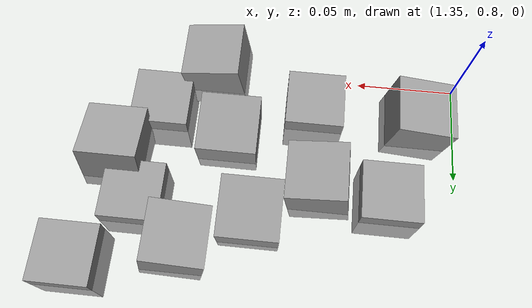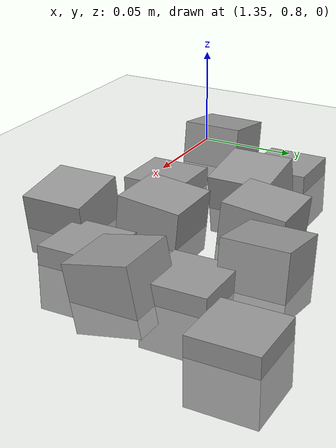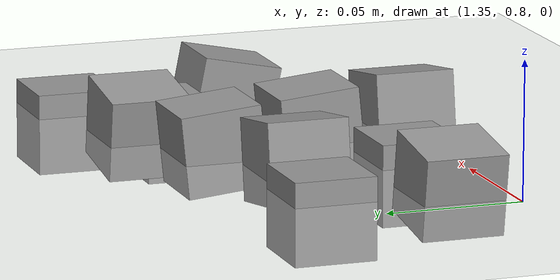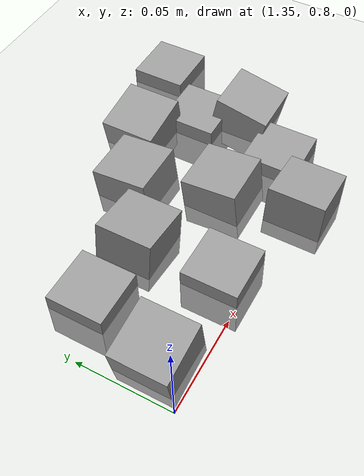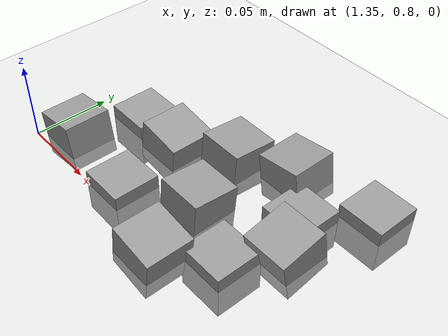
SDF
<sdf version="1.7">
 <world name="default">
  <model name="ground_plane">
   <static>1</static>
   <link name="link">
    <collision name="collision">
     <geometry><plane><normal>0 0 1</normal><size>100 100</size></plane></geometry>
     <surface><friction><ode><mu>100</mu><mu2>50</mu2></ode></friction></surface>
    </collision>
    <visual name="visual">
     <cast_shadows>0</cast_shadows>
     <geometry><plane><normal>0 0 1</normal><size>100 100</size></plane></geometry>
     <material>
      <script><uri>file://media/materials/scripts/gazebo.material</uri><name>Gazebo/Grey</name></script>
     </material>
    </visual>
   </link>
  </model>
  <model name="stone_road_0">
   <link name="link_0_clone_10">
    <inertial>
     <mass>1</mass>
     <inertia>
      <ixx>0.166667</ixx>
      <ixy>0</ixy>
      <ixz>0</ixz>
      <iyy>0.166667</iyy>
      <iyz>0</iyz>
      <izz>0.166667</izz>
     </inertia>
    </inertial>
    <pose>-0.01295 0.17123 0.003778 0.2 -0 0</pose>
    <kinematic>1</kinematic>
    <visual name="visual">
     <geometry><box><size>0.03 0.03 0.03</size></box></geometry>
     <material>
      <lighting>1</lighting>
      <script><uri>file://media/materials/scripts/gazebo.material</uri><name>Gazebo/Grey</name></script>
      <shader type="pixel"><normal_map>__default__</normal_map></shader>
      <ambient>0.3 0.3 0.3 1</ambient>
      <diffuse>0.7 0.7 0.7 1</diffuse>
      <specular>0.01 0.01 0.01 1</specular>
      <emissive>0 0 0 1</emissive>
     </material>
    </visual>
    <collision name="collision">
     <geometry><box><size>0.03 0.03 0.03</size></box></geometry>
     <surface>
      <friction>
       <ode><mu>1</mu><mu2>1</mu2><fdir1>0 0 0</fdir1><slip1>0</slip1><slip2>0</slip2></ode>
       <torsional>
        <coefficient>1</coefficient>
        <patch_radius>0</patch_radius>
        <surface_radius>0</surface_radius>
        <use_patch_radius>1</use_patch_radius>
        <ode><slip>0</slip></ode>
       </torsional>
      </friction>
      <bounce><restitution_coefficient>0</restitution_coefficient><threshold>1e+06</threshold></bounce>
      <contact>
       <collide_without_contact>0</collide_without_contact>
       <collide_without_contact_bitmask>1</collide_without_contact_bitmask>
       <collide_bitmask>1</collide_bitmask>
       <ode>
        <soft_cfm>0</soft_cfm>
        <soft_erp>0.2</soft_erp>
        <kp>1e+13</kp>
        <kd>1</kd>
        <max_vel>0.01</max_vel>
        <min_depth>0</min_depth>
       </ode>
       <bullet>
        <split_impulse>1</split_impulse>
        <split_impulse_penetration_threshold>-0.01</split_impulse_penetration_threshold>
        <soft_cfm>0</soft_cfm>
        <soft_erp>0.2</soft_erp>
        <kp>1e+13</kp>
        <kd>1</kd>
       </bullet>
      </contact>
     </surface>
    </collision>
   </link>
   <link name="link_0_clone_2_clone_2_clone_11">
    <inertial>
     <mass>1</mass>
     <inertia>
      <ixx>0.166667</ixx>
      <ixy>0</ixy>
      <ixz>0</ixz>
      <iyy>0.166667</iyy>
      <iyz>0</iyz>
      <izz>0.166667</izz>
     </inertia>
    </inertial>
    <pose>-0.050382 0.216558 0.003778 0 -0.15 0</pose>
    <kinematic>1</kinematic>
    <visual name="visual">
     <geometry><box><size>0.03 0.03 0.03</size></box></geometry>
     <material>
      <lighting>1</lighting>
      <script><uri>file://media/materials/scripts/gazebo.material</uri><name>Gazebo/Grey</name></script>
      <shader type="pixel"><normal_map>__default__</normal_map></shader>
      <ambient>0.3 0.3 0.3 1</ambient>
      <diffuse>0.7 0.7 0.7 1</diffuse>
      <specular>0.01 0.01 0.01 1</specular>
      <emissive>0 0 0 1</emissive>
     </material>
    </visual>
    <collision name="collision">
     <geometry><box><size>0.03 0.03 0.03</size></box></geometry>
     <surface>
      <friction>
       <ode><mu>1</mu><mu2>1</mu2><fdir1>0 0 0</fdir1><slip1>0</slip1><slip2>0</slip2></ode>
       <torsional>
        <coefficient>1</coefficient>
        <patch_radius>0</patch_radius>
        <surface_radius>0</surface_radius>
        <use_patch_radius>1</use_patch_radius>
        <ode><slip>0</slip></ode>
       </torsional>
      </friction>
      <bounce><restitution_coefficient>0</restitution_coefficient><threshold>1e+06</threshold></bounce>
      <contact>
       <collide_without_contact>0</collide_without_contact>
       <collide_without_contact_bitmask>1</collide_without_contact_bitmask>
       <collide_bitmask>1</collide_bitmask>
       <ode>
        <soft_cfm>0</soft_cfm>
        <soft_erp>0.2</soft_erp>
        <kp>1e+13</kp>
        <kd>1</kd>
        <max_vel>0.01</max_vel>
        <min_depth>0</min_depth>
       </ode>
       <bullet>
        <split_impulse>1</split_impulse>
        <split_impulse_penetration_threshold>-0.01</split_impulse_penetration_threshold>
        <soft_cfm>0</soft_cfm>
        <soft_erp>0.2</soft_erp>
        <kp>1e+13</kp>
        <kd>1</kd>
       </bullet>
      </contact>
     </surface>
    </collision>
   </link>
   <link name="link_0_clone_2_clone_2_clone_13_clone_clone_13">
    <inertial>
     <mass>1</mass>
     <inertia>
      <ixx>0.166667</ixx>
      <ixy>0</ixy>
      <ixz>0</ixz>
      <iyy>0.166667</iyy>
      <iyz>0</iyz>
      <izz>0.166667</izz>
     </inertia>
    </inertial>
    <pose>-0.069861 0.157394 0.003778 -0.1 0 0</pose>
    <kinematic>1</kinematic>
    <visual name="visual">
     <geometry><box><size>0.03 0.03 0.03</size></box></geometry>
     <material>
      <lighting>1</lighting>
      <script><uri>file://media/materials/scripts/gazebo.material</uri><name>Gazebo/Grey</name></script>
      <shader type="pixel"><normal_map>__default__</normal_map></shader>
      <ambient>0.3 0.3 0.3 1</ambient>
      <diffuse>0.7 0.7 0.7 1</diffuse>
      <specular>0.01 0.01 0.01 1</specular>
      <emissive>0 0 0 1</emissive>
     </material>
    </visual>
    <collision name="collision">
     <geometry><box><size>0.03 0.03 0.03</size></box></geometry>
     <surface>
      <friction>
       <ode><mu>1</mu><mu2>1</mu2><fdir1>0 0 0</fdir1><slip1>0</slip1><slip2>0</slip2></ode>
       <torsional>
        <coefficient>1</coefficient>
        <patch_radius>0</patch_radius>
        <surface_radius>0</surface_radius>
        <use_patch_radius>1</use_patch_radius>
        <ode><slip>0</slip></ode>
       </torsional>
      </friction>
      <bounce><restitution_coefficient>0</restitution_coefficient><threshold>1e+06</threshold></bounce>
      <contact>
       <collide_without_contact>0</collide_without_contact>
       <collide_without_contact_bitmask>1</collide_without_contact_bitmask>
       <collide_bitmask>1</collide_bitmask>
       <ode>
        <soft_cfm>0</soft_cfm>
        <soft_erp>0.2</soft_erp>
        <kp>1e+13</kp>
        <kd>1</kd>
        <max_vel>0.01</max_vel>
        <min_depth>0</min_depth>
       </ode>
       <bullet>
        <split_impulse>1</split_impulse>
        <split_impulse_penetration_threshold>-0.01</split_impulse_penetration_threshold>
        <soft_cfm>0</soft_cfm>
        <soft_erp>0.2</soft_erp>
        <kp>1e+13</kp>
        <kd>1</kd>
       </bullet>
      </contact>
     </surface>
    </collision>
   </link>
   <link name="link_0_clone_2_clone_2_clone_13_clone_clone_15">
    <inertial>
     <mass>1</mass>
     <inertia>
      <ixx>0.166667</ixx>
      <ixy>0</ixy>
      <ixz>0</ixz>
      <iyy>0.166667</iyy>
      <iyz>0</iyz>
      <izz>0.166667</izz>
     </inertia>
    </inertial>
    <pose>-0.084893 0.19984 0.003778 -0.1 0 0</pose>
    <kinematic>1</kinematic>
    <visual name="visual">
     <geometry><box><size>0.03 0.03 0.03</size></box></geometry>
     <material>
      <lighting>1</lighting>
      <script><uri>file://media/materials/scripts/gazebo.material</uri><name>Gazebo/Grey</name></script>
      <shader type="pixel"><normal_map>__default__</normal_map></shader>
      <ambient>0.3 0.3 0.3 1</ambient>
      <diffuse>0.7 0.7 0.7 1</diffuse>
      <specular>0.01 0.01 0.01 1</specular>
      <emissive>0 0 0 1</emissive>
     </material>
    </visual>
    <collision name="collision">
     <geometry><box><size>0.03 0.03 0.03</size></box></geometry>
     <surface>
      <friction>
       <ode><mu>1</mu><mu2>1</mu2><fdir1>0 0 0</fdir1><slip1>0</slip1><slip2>0</slip2></ode>
       <torsional>
        <coefficient>1</coefficient>
        <patch_radius>0</patch_radius>
        <surface_radius>0</surface_radius>
        <use_patch_radius>1</use_patch_radius>
        <ode><slip>0</slip></ode>
       </torsional>
      </friction>
      <bounce><restitution_coefficient>0</restitution_coefficient><threshold>1e+06</threshold></bounce>
      <contact>
       <collide_without_contact>0</collide_without_contact>
       <collide_without_contact_bitmask>1</collide_without_contact_bitmask>
       <collide_bitmask>1</collide_bitmask>
       <ode>
        <soft_cfm>0</soft_cfm>
        <soft_erp>0.2</soft_erp>
        <kp>1e+13</kp>
        <kd>1</kd>
        <max_vel>0.01</max_vel>
        <min_depth>0</min_depth>
       </ode>
       <bullet>
        <split_impulse>1</split_impulse>
        <split_impulse_penetration_threshold>-0.01</split_impulse_penetration_threshold>
        <soft_cfm>0</soft_cfm>
        <soft_erp>0.2</soft_erp>
        <kp>1e+13</kp>
        <kd>1</kd>
       </bullet>
      </contact>
     </surface>
    </collision>
   </link>
   <link name="link_0_clone_2_clone_2_clone_13_clone_clone_16_clone_21">
    <inertial>
     <mass>1</mass>
     <inertia>
      <ixx>0.166667</ixx>
      <ixy>0</ixy>
      <ixz>0</ixz>
      <iyy>0.166667</iyy>
      <iyz>0</iyz>
      <izz>0.166667</izz>
     </inertia>
    </inertial>
    <pose>-0.032398 0.142589 -0.006222 0 -0 0</pose>
    <kinematic>1</kinematic>
    <visual name="visual">
     <geometry><box><size>0.03 0.03 0.03</size></box></geometry>
     <material>
      <lighting>1</lighting>
      <script><uri>file://media/materials/scripts/gazebo.material</uri><name>Gazebo/Grey</name></script>
      <shader type="pixel"><normal_map>__default__</normal_map></shader>
      <ambient>0.3 0.3 0.3 1</ambient>
      <diffuse>0.7 0.7 0.7 1</diffuse>
      <specular>0.01 0.01 0.01 1</specular>
      <emissive>0 0 0 1</emissive>
     </material>
    </visual>
    <collision name="collision">
     <geometry><box><size>0.03 0.03 0.03</size></box></geometry>
     <surface>
      <friction>
       <ode><mu>1</mu><mu2>1</mu2><fdir1>0 0 0</fdir1><slip1>0</slip1><slip2>0</slip2></ode>
       <torsional>
        <coefficient>1</coefficient>
        <patch_radius>0</patch_radius>
        <surface_radius>0</surface_radius>
        <use_patch_radius>1</use_patch_radius>
        <ode><slip>0</slip></ode>
       </torsional>
      </friction>
      <bounce><restitution_coefficient>0</restitution_coefficient><threshold>1e+06</threshold></bounce>
      <contact>
       <collide_without_contact>0</collide_without_contact>
       <collide_without_contact_bitmask>1</collide_without_contact_bitmask>
       <collide_bitmask>1</collide_bitmask>
       <ode>
        <soft_cfm>0</soft_cfm>
        <soft_erp>0.2</soft_erp>
        <kp>1e+13</kp>
        <kd>1</kd>
        <max_vel>0.01</max_vel>
        <min_depth>0</min_depth>
       </ode>
       <bullet>
        <split_impulse>1</split_impulse>
        <split_impulse_penetration_threshold>-0.01</split_impulse_penetration_threshold>
        <soft_cfm>0</soft_cfm>
        <soft_erp>0.2</soft_erp>
        <kp>1e+13</kp>
        <kd>1</kd>
       </bullet>
      </contact>
     </surface>
    </collision>
   </link>
   <link name="link_0_clone_2_clone_2_clone_13_clone_clone_16_clone_22">
    <inertial>
     <mass>1</mass>
     <inertia>
      <ixx>0.166667</ixx>
      <ixy>0</ixy>
      <ixz>0</ixz>
      <iyy>0.166667</iyy>
      <iyz>0</iyz>
      <izz>0.166667</izz>
     </inertia>
    </inertial>
    <pose>-0.025872 0.194724 -0.006222 0 -0 0</pose>
    <kinematic>1</kinematic>
    <visual name="visual">
     <geometry><box><size>0.03 0.03 0.03</size></box></geometry>
     <material>
      <lighting>1</lighting>
      <script><uri>file://media/materials/scripts/gazebo.material</uri><name>Gazebo/Grey</name></script>
      <shader type="pixel"><normal_map>__default__</normal_map></shader>
      <ambient>0.3 0.3 0.3 1</ambient>
      <diffuse>0.7 0.7 0.7 1</diffuse>
      <specular>0.01 0.01 0.01 1</specular>
      <emissive>0 0 0 1</emissive>
     </material>
    </visual>
    <collision name="collision">
     <geometry><box><size>0.03 0.03 0.03</size></box></geometry>
     <surface>
      <friction>
       <ode><mu>1</mu><mu2>1</mu2><fdir1>0 0 0</fdir1><slip1>0</slip1><slip2>0</slip2></ode>
       <torsional>
        <coefficient>1</coefficient>
        <patch_radius>0</patch_radius>
        <surface_radius>0</surface_radius>
        <use_patch_radius>1</use_patch_radius>
        <ode><slip>0</slip></ode>
       </torsional>
      </friction>
      <bounce><restitution_coefficient>0</restitution_coefficient><threshold>1e+06</threshold></bounce>
      <contact>
       <collide_without_contact>0</collide_without_contact>
       <collide_without_contact_bitmask>1</collide_without_contact_bitmask>
       <collide_bitmask>1</collide_bitmask>
       <ode>
        <soft_cfm>0</soft_cfm>
        <soft_erp>0.2</soft_erp>
        <kp>1e+13</kp>
        <kd>1</kd>
        <max_vel>0.01</max_vel>
        <min_depth>0</min_depth>
       </ode>
       <bullet>
        <split_impulse>1</split_impulse>
        <split_impulse_penetration_threshold>-0.01</split_impulse_penetration_threshold>
        <soft_cfm>0</soft_cfm>
        <soft_erp>0.2</soft_erp>
        <kp>1e+13</kp>
        <kd>1</kd>
       </bullet>
      </contact>
     </surface>
    </collision>
   </link>
   <link name="link_0_clone_2_clone_2_clone_13_clone_clone_16_clone_23">
    <inertial>
     <mass>1</mass>
     <inertia>
      <ixx>0.166667</ixx>
      <ixy>0</ixy>
      <ixz>0</ixz>
      <iyy>0.166667</iyy>
      <iyz>0</iyz>
      <izz>0.166667</izz>
     </inertia>
    </inertial>
    <pose>0.000385 0.228664 -0.006222 0 -0 0</pose>
    <kinematic>1</kinematic>
    <visual name="visual">
     <geometry><box><size>0.03 0.03 0.03</size></box></geometry>
     <material>
      <lighting>1</lighting>
      <script><uri>file://media/materials/scripts/gazebo.material</uri><name>Gazebo/Grey</name></script>
      <shader type="pixel"><normal_map>__default__</normal_map></shader>
      <ambient>0.3 0.3 0.3 1</ambient>
      <diffuse>0.7 0.7 0.7 1</diffuse>
      <specular>0.01 0.01 0.01 1</specular>
      <emissive>0 0 0 1</emissive>
     </material>
    </visual>
    <collision name="collision">
     <geometry><box><size>0.03 0.03 0.03</size></box></geometry>
     <surface>
      <friction>
       <ode><mu>1</mu><mu2>1</mu2><fdir1>0 0 0</fdir1><slip1>0</slip1><slip2>0</slip2></ode>
       <torsional>
        <coefficient>1</coefficient>
        <patch_radius>0</patch_radius>
        <surface_radius>0</surface_radius>
        <use_patch_radius>1</use_patch_radius>
        <ode><slip>0</slip></ode>
       </torsional>
      </friction>
      <bounce><restitution_coefficient>0</restitution_coefficient><threshold>1e+06</threshold></bounce>
      <contact>
       <collide_without_contact>0</collide_without_contact>
       <collide_without_contact_bitmask>1</collide_without_contact_bitmask>
       <collide_bitmask>1</collide_bitmask>
       <ode>
        <soft_cfm>0</soft_cfm>
        <soft_erp>0.2</soft_erp>
        <kp>1e+13</kp>
        <kd>1</kd>
        <max_vel>0.01</max_vel>
        <min_depth>0</min_depth>
       </ode>
       <bullet>
        <split_impulse>1</split_impulse>
        <split_impulse_penetration_threshold>-0.01</split_impulse_penetration_threshold>
        <soft_cfm>0</soft_cfm>
        <soft_erp>0.2</soft_erp>
        <kp>1e+13</kp>
        <kd>1</kd>
       </bullet>
      </contact>
     </surface>
    </collision>
   </link>
   <link name="link_0_clone_2_clone_2_clone_13_clone_clone_16_clone_25">
    <inertial>
     <mass>1</mass>
     <inertia>
      <ixx>0.166667</ixx>
      <ixy>0</ixy>
      <ixz>0</ixz>
      <iyy>0.166667</iyy>
      <iyz>0</iyz>
      <izz>0.166667</izz>
     </inertia>
    </inertial>
    <pose>-0.15326 0.182661 -0.006222 0 -0 0</pose>
    <kinematic>1</kinematic>
    <visual name="visual">
     <geometry><box><size>0.03 0.03 0.03</size></box></geometry>
     <material>
      <lighting>1</lighting>
      <script><uri>file://media/materials/scripts/gazebo.material</uri><name>Gazebo/Grey</name></script>
      <shader type="pixel"><normal_map>__default__</normal_map></shader>
      <ambient>0.3 0.3 0.3 1</ambient>
      <diffuse>0.7 0.7 0.7 1</diffuse>
      <specular>0.01 0.01 0.01 1</specular>
      <emissive>0 0 0 1</emissive>
     </material>
    </visual>
    <collision name="collision">
     <geometry><box><size>0.03 0.03 0.03</size></box></geometry>
     <surface>
      <friction>
       <ode><mu>1</mu><mu2>1</mu2><fdir1>0 0 0</fdir1><slip1>0</slip1><slip2>0</slip2></ode>
       <torsional>
        <coefficient>1</coefficient>
        <patch_radius>0</patch_radius>
        <surface_radius>0</surface_radius>
        <use_patch_radius>1</use_patch_radius>
        <ode><slip>0</slip></ode>
       </torsional>
      </friction>
      <bounce><restitution_coefficient>0</restitution_coefficient><threshold>1e+06</threshold></bounce>
      <contact>
       <collide_without_contact>0</collide_without_contact>
       <collide_without_contact_bitmask>1</collide_without_contact_bitmask>
       <collide_bitmask>1</collide_bitmask>
       <ode>
        <soft_cfm>0</soft_cfm>
        <soft_erp>0.2</soft_erp>
        <kp>1e+13</kp>
        <kd>1</kd>
        <max_vel>0.01</max_vel>
        <min_depth>0</min_depth>
       </ode>
       <bullet>
        <split_impulse>1</split_impulse>
        <split_impulse_penetration_threshold>-0.01</split_impulse_penetration_threshold>
        <soft_cfm>0</soft_cfm>
        <soft_erp>0.2</soft_erp>
        <kp>1e+13</kp>
        <kd>1</kd>
       </bullet>
      </contact>
     </surface>
    </collision>
   </link>
   <link name="link_0_clone_2_clone_2_clone_13_clone_clone_16_clone_3">
    <inertial>
     <mass>1</mass>
     <inertia>
      <ixx>0.166667</ixx>
      <ixy>0</ixy>
      <ixz>0</ixz>
      <iyy>0.166667</iyy>
      <iyz>0</iyz>
      <izz>0.166667</izz>
     </inertia>
    </inertial>
    <pose>-0.112739 0.135576 -0.006222 0 -0 0</pose>
    <kinematic>1</kinematic>
    <visual name="visual">
     <geometry><box><size>0.03 0.03 0.03</size></box></geometry>
     <material>
      <lighting>1</lighting>
      <script><uri>file://media/materials/scripts/gazebo.material</uri><name>Gazebo/Grey</name></script>
      <shader type="pixel"><normal_map>__default__</normal_map></shader>
      <ambient>0.3 0.3 0.3 1</ambient>
      <diffuse>0.7 0.7 0.7 1</diffuse>
      <specular>0.01 0.01 0.01 1</specular>
      <emissive>0 0 0 1</emissive>
     </material>
    </visual>
    <collision name="collision">
     <geometry><box><size>0.03 0.03 0.03</size></box></geometry>
     <surface>
      <friction>
       <ode><mu>1</mu><mu2>1</mu2><fdir1>0 0 0</fdir1><slip1>0</slip1><slip2>0</slip2></ode>
       <torsional>
        <coefficient>1</coefficient>
        <patch_radius>0</patch_radius>
        <surface_radius>0</surface_radius>
        <use_patch_radius>1</use_patch_radius>
        <ode><slip>0</slip></ode>
       </torsional>
      </friction>
      <bounce><restitution_coefficient>0</restitution_coefficient><threshold>1e+06</threshold></bounce>
      <contact>
       <collide_without_contact>0</collide_without_contact>
       <collide_without_contact_bitmask>1</collide_without_contact_bitmask>
       <collide_bitmask>1</collide_bitmask>
       <ode>
        <soft_cfm>0</soft_cfm>
        <soft_erp>0.2</soft_erp>
        <kp>1e+13</kp>
        <kd>1</kd>
        <max_vel>0.01</max_vel>
        <min_depth>0</min_depth>
       </ode>
       <bullet>
        <split_impulse>1</split_impulse>
        <split_impulse_penetration_threshold>-0.01</split_impulse_penetration_threshold>
        <soft_cfm>0</soft_cfm>
        <soft_erp>0.2</soft_erp>
        <kp>1e+13</kp>
        <kd>1</kd>
       </bullet>
      </contact>
     </surface>
    </collision>
   </link>
   <link name="link_0_clone_2_clone_2_clone_2">
    <inertial>
     <mass>1</mass>
     <inertia>
      <ixx>0.166667</ixx>
      <ixy>0</ixy>
      <ixz>0</ixz>
      <iyy>0.166667</iyy>
      <iyz>0</iyz>
      <izz>0.166667</izz>
     </inertia>
    </inertial>
    <pose>-0.166079 0.139989 0.003778 0 -0.15 0</pose>
    <kinematic>1</kinematic>
    <visual name="visual">
     <geometry><box><size>0.03 0.03 0.03</size></box></geometry>
     <material>
      <lighting>1</lighting>
      <script><uri>file://media/materials/scripts/gazebo.material</uri><name>Gazebo/Grey</name></script>
      <shader type="pixel"><normal_map>__default__</normal_map></shader>
      <ambient>0.3 0.3 0.3 1</ambient>
      <diffuse>0.7 0.7 0.7 1</diffuse>
      <specular>0.01 0.01 0.01 1</specular>
      <emissive>0 0 0 1</emissive>
     </material>
    </visual>
    <collision name="collision">
     <geometry><box><size>0.03 0.03 0.03</size></box></geometry>
     <surface>
      <friction>
       <ode><mu>1</mu><mu2>1</mu2><fdir1>0 0 0</fdir1><slip1>0</slip1><slip2>0</slip2></ode>
       <torsional>
        <coefficient>1</coefficient>
        <patch_radius>0</patch_radius>
        <surface_radius>0</surface_radius>
        <use_patch_radius>1</use_patch_radius>
        <ode><slip>0</slip></ode>
       </torsional>
      </friction>
      <bounce><restitution_coefficient>0</restitution_coefficient><threshold>1e+06</threshold></bounce>
      <contact>
       <collide_without_contact>0</collide_without_contact>
       <collide_without_contact_bitmask>1</collide_without_contact_bitmask>
       <collide_bitmask>1</collide_bitmask>
       <ode>
        <soft_cfm>0</soft_cfm>
        <soft_erp>0.2</soft_erp>
        <kp>1e+13</kp>
        <kd>1</kd>
        <max_vel>0.01</max_vel>
        <min_depth>0</min_depth>
       </ode>
       <bullet>
        <split_impulse>1</split_impulse>
        <split_impulse_penetration_threshold>-0.01</split_impulse_penetration_threshold>
        <soft_cfm>0</soft_cfm>
        <soft_erp>0.2</soft_erp>
        <kp>1e+13</kp>
        <kd>1</kd>
       </bullet>
      </contact>
     </surface>
    </collision>
   </link>
   <link name="link_0_clone_2_clone_3">
    <inertial>
     <mass>1</mass>
     <inertia>
      <ixx>0.166667</ixx>
      <ixy>0</ixy>
      <ixz>0</ixz>
      <iyy>0.166667</iyy>
      <iyz>0</iyz>
      <izz>0.166667</izz>
     </inertia>
    </inertial>
    <pose>-0.058921 0.117271 0.003778 0 0.15 0</pose>
    <kinematic>1</kinematic>
    <visual name="visual">
     <geometry><box><size>0.03 0.03 0.03</size></box></geometry>
     <material>
      <lighting>1</lighting>
      <script><uri>file://media/materials/scripts/gazebo.material</uri><name>Gazebo/Grey</name></script>
      <shader type="pixel"><normal_map>__default__</normal_map></shader>
      <ambient>0.3 0.3 0.3 1</ambient>
      <diffuse>0.7 0.7 0.7 1</diffuse>
      <specular>0.01 0.01 0.01 1</specular>
      <emissive>0 0 0 1</emissive>
     </material>
    </visual>
    <collision name="collision">
     <geometry><box><size>0.03 0.03 0.03</size></box></geometry>
     <surface>
      <friction>
       <ode><mu>1</mu><mu2>1</mu2><fdir1>0 0 0</fdir1><slip1>0</slip1><slip2>0</slip2></ode>
       <torsional>
        <coefficient>1</coefficient>
        <patch_radius>0</patch_radius>
        <surface_radius>0</surface_radius>
        <use_patch_radius>1</use_patch_radius>
        <ode><slip>0</slip></ode>
       </torsional>
      </friction>
      <bounce><restitution_coefficient>0</restitution_coefficient><threshold>1e+06</threshold></bounce>
      <contact>
       <collide_without_contact>0</collide_without_contact>
       <collide_without_contact_bitmask>1</collide_without_contact_bitmask>
       <collide_bitmask>1</collide_bitmask>
       <ode>
        <soft_cfm>0</soft_cfm>
        <soft_erp>0.2</soft_erp>
        <kp>1e+13</kp>
        <kd>1</kd>
        <max_vel>0.01</max_vel>
        <min_depth>0</min_depth>
       </ode>
       <bullet>
        <split_impulse>1</split_impulse>
        <split_impulse_penetration_threshold>-0.01</split_impulse_penetration_threshold>
        <soft_cfm>0</soft_cfm>
        <soft_erp>0.2</soft_erp>
        <kp>1e+13</kp>
        <kd>1</kd>
       </bullet>
      </contact>
     </surface>
    </collision>
   </link>
   <link name="link_0_clone_2_clone_4">
    <inertial>
     <mass>1</mass>
     <inertia>
      <ixx>0.166667</ixx>
      <ixy>0</ixy>
      <ixz>0</ixz>
      <iyy>0.166667</iyy>
      <iyz>0</iyz>
      <izz>0.166667</izz>
     </inertia>
    </inertial>
    <pose>-0.117313 0.179399 0.003778 0 0.15 0</pose>
    <kinematic>1</kinematic>
    <visual name="visual">
     <geometry><box><size>0.03 0.03 0.03</size></box></geometry>
     <material>
      <lighting>1</lighting>
      <script><uri>file://media/materials/scripts/gazebo.material</uri><name>Gazebo/Grey</name></script>
      <shader type="pixel"><normal_map>__default__</normal_map></shader>
      <ambient>0.3 0.3 0.3 1</ambient>
      <diffuse>0.7 0.7 0.7 1</diffuse>
      <specular>0.01 0.01 0.01 1</specular>
      <emissive>0 0 0 1</emissive>
     </material>
    </visual>
    <collision name="collision">
     <geometry><box><size>0.03 0.03 0.03</size></box></geometry>
     <surface>
      <friction>
       <ode><mu>1</mu><mu2>1</mu2><fdir1>0 0 0</fdir1><slip1>0</slip1><slip2>0</slip2></ode>
       <torsional>
        <coefficient>1</coefficient>
        <patch_radius>0</patch_radius>
        <surface_radius>0</surface_radius>
        <use_patch_radius>1</use_patch_radius>
        <ode><slip>0</slip></ode>
       </torsional>
      </friction>
      <bounce><restitution_coefficient>0</restitution_coefficient><threshold>1e+06</threshold></bounce>
      <contact>
       <collide_without_contact>0</collide_without_contact>
       <collide_without_contact_bitmask>1</collide_without_contact_bitmask>
       <collide_bitmask>1</collide_bitmask>
       <ode>
        <soft_cfm>0</soft_cfm>
        <soft_erp>0.2</soft_erp>
        <kp>1e+13</kp>
        <kd>1</kd>
        <max_vel>0.01</max_vel>
        <min_depth>0</min_depth>
       </ode>
       <bullet>
        <split_impulse>1</split_impulse>
        <split_impulse_penetration_threshold>-0.01</split_impulse_penetration_threshold>
        <soft_cfm>0</soft_cfm>
        <soft_erp>0.2</soft_erp>
        <kp>1e+13</kp>
        <kd>1</kd>
       </bullet>
      </contact>
     </surface>
    </collision>
   </link>
   <static>0</static>
   <pose>1.53544 0.679184 -0 0 -0 0</pose>
  </model>
 </world>
</sdf>
